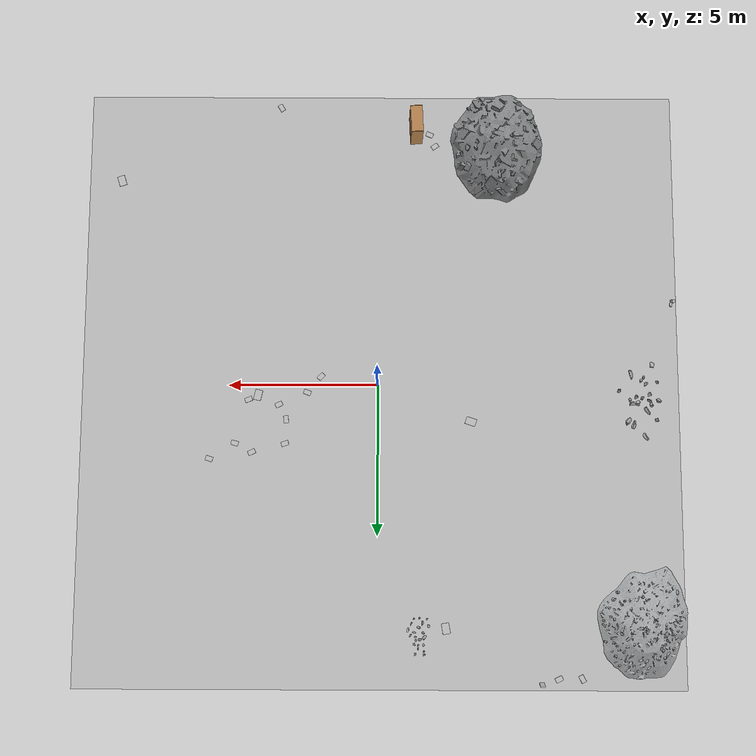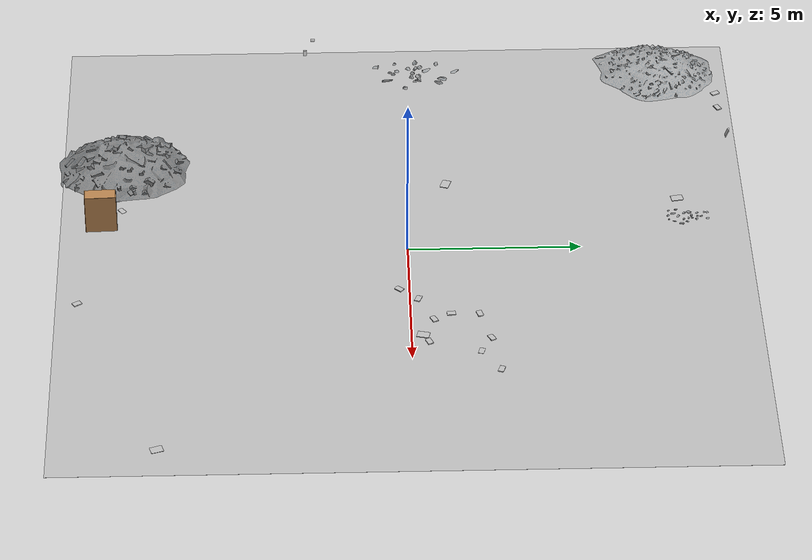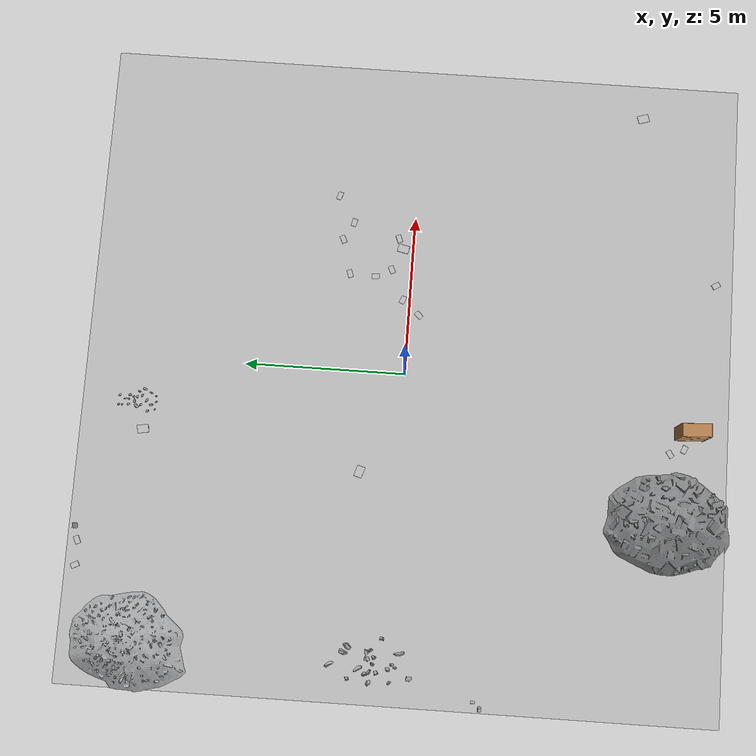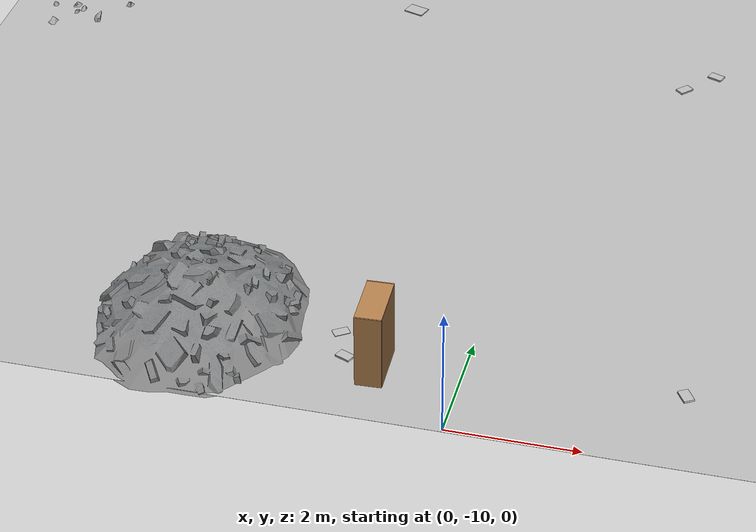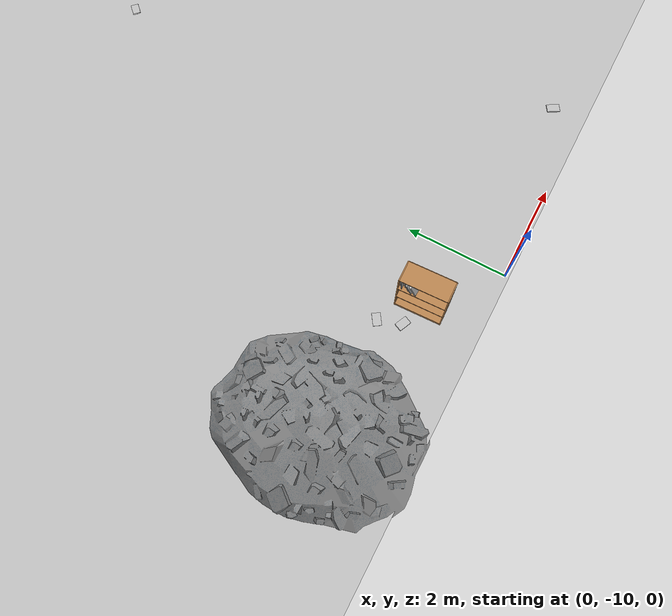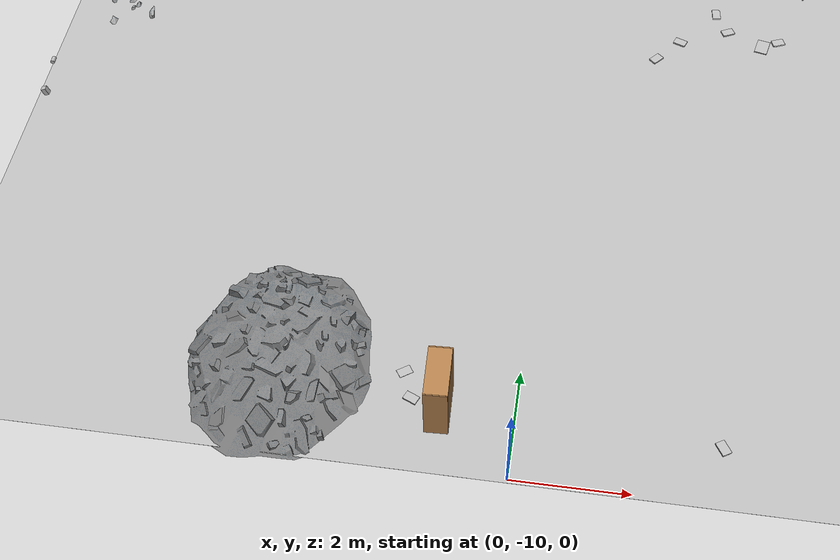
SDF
<sdf version="1.6">
 <world name="default">
  <scene><shadows>0</shadows><ambient>0.4 0.4 0.4 1</ambient><background>0.7 0.7 0.7 1</background></scene>
  <light name="sun" type="directional">
   <cast_shadows>0</cast_shadows>
   <pose>0 0 5 0 -0 0</pose>
   <diffuse>0.8 0.8 0.8 1</diffuse>
   <specular>0.1 0.1 0.1 1</specular>
   <attenuation>
    <range>1000</range>
    <constant>0.9</constant>
    <linear>0.01</linear>
    <quadratic>0.001</quadratic>
   </attenuation>
   <direction>-0.5 0.5 -1</direction>
  </light>
  <physics name="default_physics" default="0" type="ode">
   <max_step_size>0.001</max_step_size>
   <real_time_factor>1</real_time_factor>
   <real_time_update_rate>1000</real_time_update_rate>
  </physics>
  <scene><ambient>0.4 0.4 0.4 1</ambient><background>0.7 0.7 0.7 1</background><shadows>1</shadows></scene>
  <spherical_coordinates>
   <surface_model>EARTH_WGS84</surface_model>
   <latitude_deg>0</latitude_deg>
   <longitude_deg>0</longitude_deg>
   <elevation>0</elevation>
   <heading_deg>0</heading_deg>
  </spherical_coordinates>
  <model name="ground_plane">
   <static>1</static>
   <link name="link">
    <collision name="collision">
     <geometry><plane><normal>0 0 1</normal><size>100 100</size></plane></geometry>
     <surface><friction><ode><mu>1</mu><mu2>1</mu2></ode></friction></surface>
    </collision>
    <visual name="visual">
     <cast_shadows>0</cast_shadows>
     <geometry><plane><normal>0 0 1</normal><size>100 100</size></plane></geometry>
     <material>
      <script><uri>file://media/materials/scripts/gazebo.material</uri><name>Gazebo/Grey</name></script>
     </material>
    </visual>
    <velocity_decay><linear>0</linear><angular>0</angular></velocity_decay>
   </link>
  </model>
  <gravity>0 0 -9.8</gravity>
  <magnetic_field>6e-06 2.3e-05 -4.2e-05</magnetic_field>
  <atmosphere type="adiabatic"/>
  <model name="bookshelf">
   <static>1</static>
   <link name="link">
    <inertial><mass>1</mass></inertial>
    <collision name="back">
     <pose>0 0.005 0.6 0 -0 0</pose>
     <geometry><box><size>0.9 0.01 1.2</size></box></geometry>
    </collision>
    <visual name="visual1">
     <pose>0 0.005 0.6 0 -0 0</pose>
     <geometry><box><size>0.9 0.01 1.2</size></box></geometry>
     <material>
      <script><uri>file://media/materials/scripts/gazebo.material</uri><name>Gazebo/Wood</name></script>
     </material>
    </visual>
    <collision name="left_side">
     <pose>0.45 -0.195 0.6 0 -0 0</pose>
     <geometry><box><size>0.02 0.4 1.2</size></box></geometry>
    </collision>
    <visual name="visual2">
     <pose>0.45 -0.195 0.6 0 -0 0</pose>
     <geometry><box><size>0.02 0.4 1.2</size></box></geometry>
     <material>
      <script><uri>file://media/materials/scripts/gazebo.material</uri><name>Gazebo/Wood</name></script>
     </material>
    </visual>
    <collision name="right_side">
     <pose>-0.45 -0.195 0.6 0 -0 0</pose>
     <geometry><box><size>0.02 0.4 1.2</size></box></geometry>
    </collision>
    <visual name="visual3">
     <pose>-0.45 -0.195 0.6 0 -0 0</pose>
     <geometry><box><size>0.02 0.4 1.2</size></box></geometry>
     <material>
      <script><uri>file://media/materials/scripts/gazebo.material</uri><name>Gazebo/Wood</name></script>
     </material>
    </visual>
    <collision name="bottom">
     <pose>0 -0.195 0.03 0 -0 0</pose>
     <geometry><box><size>0.88 0.4 0.06</size></box></geometry>
    </collision>
    <visual name="visual4">
     <pose>0 -0.195 0.03 0 -0 0</pose>
     <geometry><box><size>0.88 0.4 0.06</size></box></geometry>
     <material>
      <script><uri>file://media/materials/scripts/gazebo.material</uri><name>Gazebo/Wood</name></script>
     </material>
    </visual>
    <collision name="top">
     <pose>0 -0.195 1.19 0 -0 0</pose>
     <geometry><box><size>0.88 0.4 0.02</size></box></geometry>
    </collision>
    <visual name="visual5">
     <pose>0 -0.195 1.19 0 -0 0</pose>
     <geometry><box><size>0.88 0.4 0.02</size></box></geometry>
     <material>
      <script><uri>file://media/materials/scripts/gazebo.material</uri><name>Gazebo/Wood</name></script>
     </material>
    </visual>
    <collision name="low_shelf">
     <pose>0 -0.195 0.43 0 -0 0</pose>
     <geometry><box><size>0.88 0.4 0.02</size></box></geometry>
    </collision>
    <visual name="visual6">
     <pose>0 -0.195 0.43 0 -0 0</pose>
     <geometry><box><size>0.88 0.4 0.02</size></box></geometry>
     <material>
      <script><uri>file://media/materials/scripts/gazebo.material</uri><name>Gazebo/Wood</name></script>
     </material>
    </visual>
    <collision name="high_shelf">
     <pose>0 -0.195 0.8 0 -0 0</pose>
     <geometry><box><size>0.88 0.4 0.02</size></box></geometry>
    </collision>
    <visual name="visual7">
     <pose>0 -0.195 0.8 0 -0 0</pose>
     <geometry><box><size>0.88 0.4 0.02</size></box></geometry>
     <material>
      <script><uri>file://media/materials/scripts/gazebo.material</uri><name>Gazebo/Wood</name></script>
     </material>
    </visual>
   </link>
   <pose>-1.08243 -8.86921 0.024753 0 0 -1.52822</pose>
  </model>
  <model name="book_16">
   <link name="cover">
    <pose>0 -0.000108 0.015405 0 -0 0</pose>
    <visual name="visual">
     <geometry><box><size>0.245 0.16 0.03</size></box></geometry>
     <material>
      <script>
       <uri>model://book_16/materials/scripts</uri>
       <uri>model://book_16/materials/textures</uri>
       <name>book_16</name>
      </script>
     </material>
    </visual>
    <collision name="collision"><geometry><box><size>0.245 0.16 0.03</size></box></geometry></collision>
   </link>
   <link name="page">
    <pose>0 0.000608 0.015405 0 -0 0</pose>
    <visual name="visual">
     <geometry><box><size>0.24502 0.15862 0.028</size></box></geometry>
     <material>
      <lighting>1</lighting>
      <ambient>1 1 1 1</ambient>
      <diffuse>1 1 1 1</diffuse>
      <specular>0.01 0.01 0.01 1</specular>
      <emissive>0 0 0 1</emissive>
      <shader type="vertex"><normal_map>__default__</normal_map></shader>
     </material>
    </visual>
    <collision name="collision"><geometry><box><size>0.245 0.16 0.03</size></box></geometry></collision>
   </link>
   <static>1</static>
   <pose>4.32601 0.485904 0.027757 0 0 -2.75724</pose>
  </model>
  <model name="book_20">
   <link name="cover">
    <pose>0 -0.000108 0.015405 0 -0 0</pose>
    <visual name="visual">
     <geometry><box><size>0.245 0.16 0.03</size></box></geometry>
     <material>
      <script>
       <uri>model://book_20/materials/scripts</uri>
       <uri>model://book_20/materials/textures</uri>
       <name>book_20</name>
      </script>
     </material>
    </visual>
    <collision name="collision"><geometry><box><size>0.245 0.16 0.03</size></box></geometry></collision>
   </link>
   <link name="page">
    <pose>0 0.000608 0.015405 0 -0 0</pose>
    <visual name="visual">
     <geometry><box><size>0.24502 0.15862 0.028</size></box></geometry>
     <material>
      <lighting>1</lighting>
      <ambient>1 1 1 1</ambient>
      <diffuse>1 1 1 1</diffuse>
      <specular>0.01 0.01 0.01 1</specular>
      <emissive>0 0 0 1</emissive>
      <shader type="vertex"><normal_map>__default__</normal_map></shader>
     </material>
    </visual>
    <collision name="collision"><geometry><box><size>0.245 0.16 0.03</size></box></geometry></collision>
   </link>
   <static>1</static>
   <pose>-1.33514 -8.47354 0.933303 -3.1415 -1.50452 1.64295</pose>
  </model>
  <model name="book_21">
   <link name="cover">
    <pose>0 -0.000108 0.005 0 -0 0</pose>
    <visual name="visual">
     <geometry><box><size>0.245 0.16 0.01</size></box></geometry>
     <material>
      <script>
       <uri>model://book_21/materials/scripts</uri>
       <uri>model://book_21/materials/textures</uri>
       <name>book_21</name>
      </script>
     </material>
    </visual>
    <collision name="collision"><geometry><box><size>0.245 0.16 0.01</size></box></geometry></collision>
   </link>
   <link name="page">
    <pose>0 0.000608 0.005 0 -0 0</pose>
    <visual name="visual">
     <geometry><box><size>0.24502 0.15862 0.008</size></box></geometry>
     <material>
      <lighting>1</lighting>
      <ambient>1 1 1 1</ambient>
      <diffuse>1 1 1 1</diffuse>
      <specular>0.01 0.01 0.01 1</specular>
      <emissive>0 0 0 1</emissive>
      <shader type="vertex"><normal_map>__default__</normal_map></shader>
     </material>
    </visual>
    <collision name="collision"><geometry><box><size>0.245 0.16 0.008</size></box></geometry></collision>
   </link>
   <static>1</static>
   <pose>-1.32998 -8.52484 0.933 -3.13832 -1.32475 1.56842</pose>
  </model>
  <model name="book_3">
   <link name="cover">
    <pose>0 -0.000108 0.01 0 -0 0</pose>
    <visual name="visual">
     <geometry><box><size>0.245 0.16 0.02</size></box></geometry>
     <material>
      <script>
       <uri>model://book_3/materials/scripts</uri>
       <uri>model://book_3/materials/textures</uri>
       <name>book_3</name>
      </script>
     </material>
    </visual>
    <collision name="collision"><geometry><box><size>0.245 0.16 0.02</size></box></geometry></collision>
   </link>
   <link name="page">
    <pose>0 0.000608 0.01 0 -0 0</pose>
    <visual name="visual">
     <geometry><box><size>0.24502 0.15862 0.018</size></box></geometry>
     <material>
      <lighting>1</lighting>
      <ambient>1 1 1 1</ambient>
      <diffuse>1 1 1 1</diffuse>
      <specular>0.01 0.01 0.01 1</specular>
      <emissive>0 0 0 1</emissive>
      <shader type="vertex"><normal_map>__default__</normal_map></shader>
     </material>
    </visual>
    <collision name="collision"><geometry><box><size>0.245 0.16 0.018</size></box></geometry></collision>
   </link>
   <static>1</static>
   <pose>-1.37287 -8.59003 0.954428 -3.1394 -1.1994 1.56955</pose>
  </model>
  <model name="book_4">
   <link name="cover">
    <pose>0 -0.000108 0.01 0 -0 0</pose>
    <visual name="visual">
     <geometry><box><size>0.245 0.16 0.02</size></box></geometry>
     <material>
      <script>
       <uri>model://book_4/materials/scripts</uri>
       <uri>model://book_4/materials/textures</uri>
       <name>book_4</name>
      </script>
     </material>
     <cast_shadows>0</cast_shadows>
    </visual>
    <collision name="collision"><geometry><box><size>0.245 0.16 0.02</size></box></geometry></collision>
   </link>
   <link name="page">
    <pose>0 0.000608 0.01 0 -0 0</pose>
    <visual name="visual">
     <geometry><box><size>0.24502 0.15862 0.018</size></box></geometry>
     <material>
      <lighting>1</lighting>
      <ambient>1 1 1 1</ambient>
      <diffuse>1 1 1 1</diffuse>
      <specular>0.01 0.01 0.01 1</specular>
      <emissive>0 0 0 1</emissive>
      <shader type="vertex"><normal_map>__default__</normal_map></shader>
     </material>
     <cast_shadows>0</cast_shadows>
    </visual>
    <collision name="collision"><geometry><box><size>0.245 0.16 0.018</size></box></geometry></collision>
   </link>
   <static>1</static>
   <pose>-1.33002 -8.62073 0.934243 -3.13946 -1.18764 1.56962</pose>
  </model>
  <model name="book_9">
   <link name="cover">
    <pose>0 -0.000108 0.005 0 -0 0</pose>
    <visual name="visual">
     <geometry><box><size>0.245 0.16 0.01</size></box></geometry>
     <material>
      <script>
       <uri>model://book_9/materials/scripts</uri>
       <uri>model://book_9/materials/textures</uri>
       <name>book_9</name>
      </script>
     </material>
    </visual>
    <collision name="collision"><geometry><box><size>0.245 0.16 0.01</size></box></geometry></collision>
   </link>
   <link name="page">
    <pose>0 0.000608 0.005 0 -0 0</pose>
    <visual name="visual">
     <geometry><box><size>0.24502 0.15862 0.008</size></box></geometry>
     <material>
      <lighting>1</lighting>
      <ambient>1 1 1 1</ambient>
      <diffuse>1 1 1 1</diffuse>
      <specular>0.01 0.01 0.01 1</specular>
      <emissive>0 0 0 1</emissive>
      <shader type="vertex"><normal_map>__default__</normal_map></shader>
     </material>
    </visual>
    <collision name="collision"><geometry><box><size>0.245 0.16 0.008</size></box></geometry></collision>
   </link>
   <static>1</static>
   <pose>-1.38819 -8.49338 0.960616 -3.13349 -1.47234 1.57155</pose>
  </model>
  <model name="book_16_0">
   <link name="cover">
    <pose>0 -0.000108 0.015405 0 -0 0</pose>
    <visual name="visual">
     <geometry><box><size>0.245 0.16 0.03</size></box></geometry>
     <material>
      <script>
       <uri>model://book_16/materials/scripts</uri>
       <uri>model://book_16/materials/textures</uri>
       <name>book_16</name>
      </script>
     </material>
    </visual>
    <collision name="collision"><geometry><box><size>0.245 0.16 0.03</size></box></geometry></collision>
   </link>
   <link name="page">
    <pose>0 0.000608 0.015405 0 -0 0</pose>
    <visual name="visual">
     <geometry><box><size>0.24502 0.15862 0.028</size></box></geometry>
     <material>
      <lighting>1</lighting>
      <ambient>1 1 1 1</ambient>
      <diffuse>1 1 1 1</diffuse>
      <specular>0.01 0.01 0.01 1</specular>
      <emissive>0 0 0 1</emissive>
      <shader type="vertex"><normal_map>__default__</normal_map></shader>
     </material>
    </visual>
    <collision name="collision"><geometry><box><size>0.245 0.16 0.03</size></box></geometry></collision>
   </link>
   <static>1</static>
   <pose>-1.32786 -8.56422 0.936359 -3.13881 -1.28012 1.56893</pose>
  </model>
  <model name="book_13">
   <link name="cover">
    <pose>0 -0.000108 0.015405 0 -0 0</pose>
    <visual name="visual">
     <geometry><box><size>0.245 0.16 0.03</size></box></geometry>
     <material>
      <script>
       <uri>model://book_13/materials/scripts</uri>
       <uri>model://book_13/materials/textures</uri>
       <name>book_13</name>
      </script>
     </material>
    </visual>
    <collision name="collision"><geometry><box><size>0.245 0.16 0.03</size></box></geometry></collision>
   </link>
   <link name="page">
    <pose>0 0.000608 0.015405 0 -0 0</pose>
    <visual name="visual">
     <geometry><box><size>0.24502 0.15862 0.028</size></box></geometry>
     <material>
      <lighting>1</lighting>
      <ambient>1 1 1 1</ambient>
      <diffuse>1 1 1 1</diffuse>
      <specular>0.01 0.01 0.01 1</specular>
      <emissive>0 0 0 1</emissive>
      <shader type="vertex"><normal_map>__default__</normal_map></shader>
     </material>
    </visual>
    <collision name="collision"><geometry><box><size>0.245 0.16 0.03</size></box></geometry></collision>
   </link>
   <static>1</static>
   <pose>-1.3923 -8.72149 0.9569 -3.13982 -1.10393 1.57001</pose>
  </model>
  <model name="book_6">
   <link name="cover">
    <pose>0 -0.000108 0.01 0 -0 0</pose>
    <visual name="visual">
     <geometry><box><size>0.245 0.16 0.02</size></box></geometry>
     <material>
      <script>
       <uri>model://book_6/materials/scripts</uri>
       <uri>model://book_6/materials/textures</uri>
       <name>book_6</name>
      </script>
     </material>
    </visual>
    <collision name="collision"><geometry><box><size>0.245 0.16 0.02</size></box></geometry></collision>
   </link>
   <link name="page">
    <pose>0 0.000608 0.01 0 -0 0</pose>
    <visual name="visual">
     <geometry><box><size>0.24502 0.15862 0.018</size></box></geometry>
     <material>
      <lighting>1</lighting>
      <ambient>1 1 1 1</ambient>
      <diffuse>1 1 1 1</diffuse>
      <specular>0.01 0.01 0.01 1</specular>
      <emissive>0 0 0 1</emissive>
      <shader type="vertex"><normal_map>__default__</normal_map></shader>
     </material>
    </visual>
    <collision name="collision"><geometry><box><size>0.245 0.16 0.018</size></box></geometry></collision>
   </link>
   <static>1</static>
   <pose>-1.39435 -8.64079 0.950904 -3.13966 -1.14492 1.56984</pose>
  </model>
  <model name="book_8">
   <link name="cover">
    <pose>0 -0.000108 0.005 0 -0 0</pose>
    <visual name="visual">
     <geometry><box><size>0.245 0.16 0.01</size></box></geometry>
     <material>
      <script>
       <uri>model://book_8/materials/scripts</uri>
       <uri>model://book_8/materials/textures</uri>
       <name>book_8</name>
      </script>
     </material>
    </visual>
    <collision name="collision"><geometry><box><size>0.245 0.16 0.01</size></box></geometry></collision>
   </link>
   <link name="page">
    <pose>0 0.000608 0.005 0 -0 0</pose>
    <visual name="visual">
     <geometry><box><size>0.24502 0.15862 0.008</size></box></geometry>
     <material>
      <lighting>1</lighting>
      <ambient>1 1 1 1</ambient>
      <diffuse>1 1 1 1</diffuse>
      <specular>0.01 0.01 0.01 1</specular>
      <emissive>0 0 0 1</emissive>
      <shader type="vertex"><normal_map>__default__</normal_map></shader>
     </material>
    </visual>
    <collision name="collision"><geometry><box><size>0.245 0.16 0.008</size></box></geometry></collision>
   </link>
   <static>1</static>
   <pose>4.76567 1.94268 0.02031 0 -0 2.87142</pose>
  </model>
  <model name="book_19">
   <link name="cover">
    <pose>0 -0.000108 0.015405 0 -0 0</pose>
    <visual name="visual">
     <geometry><box><size>0.245 0.16 0.03</size></box></geometry>
     <material>
      <script>
       <uri>model://book_19/materials/scripts</uri>
       <uri>model://book_19/materials/textures</uri>
       <name>book_19</name>
      </script>
     </material>
    </visual>
    <collision name="collision"><geometry><box><size>0.245 0.16 0.03</size></box></geometry></collision>
   </link>
   <link name="page">
    <pose>0 0.000608 0.015405 0 -0 0</pose>
    <visual name="visual">
     <geometry><box><size>0.24502 0.15862 0.028</size></box></geometry>
     <material>
      <lighting>1</lighting>
      <ambient>1 1 1 1</ambient>
      <diffuse>1 1 1 1</diffuse>
      <specular>0.01 0.01 0.01 1</specular>
      <emissive>0 0 0 1</emissive>
      <shader type="vertex"><normal_map>__default__</normal_map></shader>
     </material>
    </visual>
    <collision name="collision"><geometry><box><size>0.245 0.16 0.03</size></box></geometry></collision>
   </link>
   <static>1</static>
   <pose>-1.32315 -8.68246 0.955089 -3.13968 -1.14225 1.56985</pose>
  </model>
  <model name="book_6_0">
   <link name="cover">
    <pose>0 -0.000108 0.01 0 -0 0</pose>
    <visual name="visual">
     <geometry><box><size>0.245 0.16 0.02</size></box></geometry>
     <material>
      <script>
       <uri>model://book_6/materials/scripts</uri>
       <uri>model://book_6/materials/textures</uri>
       <name>book_6</name>
      </script>
     </material>
    </visual>
    <collision name="collision"><geometry><box><size>0.245 0.16 0.02</size></box></geometry></collision>
   </link>
   <link name="page">
    <pose>0 0.000608 0.01 0 -0 0</pose>
    <visual name="visual">
     <geometry><box><size>0.24502 0.15862 0.018</size></box></geometry>
     <material>
      <lighting>1</lighting>
      <ambient>1 1 1 1</ambient>
      <diffuse>1 1 1 1</diffuse>
      <specular>0.01 0.01 0.01 1</specular>
      <emissive>0 0 0 1</emissive>
      <shader type="vertex"><normal_map>__default__</normal_map></shader>
     </material>
    </visual>
    <collision name="collision"><geometry><box><size>0.245 0.16 0.018</size></box></geometry></collision>
   </link>
   <static>1</static>
   <pose>-4.37689 -9.12673 0.113948 0 -0 1.58993</pose>
  </model>
  <model name="coffee_box">
   <link name="link_0">
    <visual name="visual">
     <pose>0 0 0.06 0 -0 0</pose>
     <geometry><cylinder><radius>0.04</radius><length>0.12</length></cylinder></geometry>
     <material>
      <script>
       <uri>model://coffee_box/materials/scripts</uri>
       <uri>model://coffee_box/materials/textures</uri>
       <name>coffee_pat</name>
      </script>
     </material>
    </visual>
    <collision name="collision">
     <geometry><cylinder><radius>0.04</radius><length>0.12</length></cylinder></geometry>
    </collision>
   </link>
   <static>1</static>
   <pose>-9.71504 -2.71285 0.736967 1.5488 -0.276425 -3.13559</pose>
  </model>
  <model name="tea_box">
   <link name="link">
    <pose>0 0 0.075 0 -0 0</pose>
    <visual name="visual">
     <geometry><box><size>0.1 0.1 0.15</size></box></geometry>
     <material>
      <script>
       <uri>model://tea_box/materials/scripts</uri>
       <uri>model://tea_box/materials/textures</uri>
       <name>tea_pat</name>
      </script>
     </material>
    </visual>
    <collision name="collision"><geometry><box><size>0.1 0.1 0.15</size></box></geometry></collision>
   </link>
   <static>1</static>
   <pose>-9.9277 -2.90064 0.040575 0 -0.351754 0</pose>
  </model>
  <model name="newspaper_2">
   <link name="link_0">
    <visual name="visual">
     <geometry><box><size>0.35 0.25 0.02</size></box></geometry>
     <material>
      <script>
       <uri>model://newspaper_2/materials/scripts</uri>
       <uri>model://newspaper_2/materials/textures</uri>
       <name>newspaper_2</name>
      </script>
     </material>
    </visual>
    <collision name="collision"><geometry><box><size>0.35 0.25 0.02</size></box></geometry></collision>
   </link>
   <static>1</static>
   <pose>8.8277 -7.06369 0.026164 -0.003988 0.021057 -1.26947</pose>
  </model>
  <model name="book_18_0">
   <link name="cover">
    <pose>0 -0.000108 0.015405 0 -0 0</pose>
    <visual name="visual">
     <geometry><box><size>0.245 0.16 0.03</size></box></geometry>
     <material>
      <script>
       <uri>model://book_18/materials/scripts</uri>
       <uri>model://book_18/materials/textures</uri>
       <name>book_18</name>
      </script>
     </material>
    </visual>
    <collision name="collision"><geometry><box><size>0.245 0.16 0.03</size></box></geometry></collision>
   </link>
   <link name="page">
    <pose>0 0.000608 0.015405 0 -0 0</pose>
    <visual name="visual">
     <geometry><box><size>0.24502 0.15862 0.028</size></box></geometry>
     <material>
      <lighting>1</lighting>
      <ambient>1 1 1 1</ambient>
      <diffuse>1 1 1 1</diffuse>
      <specular>0.01 0.01 0.01 1</specular>
      <emissive>0 0 0 1</emissive>
      <shader type="vertex"><normal_map>__default__</normal_map></shader>
     </material>
    </visual>
    <collision name="collision"><geometry><box><size>0.245 0.16 0.03</size></box></geometry></collision>
   </link>
   <static>1</static>
   <pose>3.29779 -9.39066 0.764084 0 0 -1.01851</pose>
  </model>
  <model name="newspaper_3">
   <link name="link_0">
    <visual name="visual">
     <geometry><box><size>0.35 0.25 0.02</size></box></geometry>
     <material>
      <script>
       <uri>model://newspaper_3/materials/scripts</uri>
       <uri>model://newspaper_3/materials/textures</uri>
       <name>newspaper_3</name>
      </script>
     </material>
    </visual>
    <collision name="collision"><geometry><box><size>0.35 0.25 0.02</size></box></geometry></collision>
   </link>
   <static>1</static>
   <pose>4.01161 0.328985 0.034462 0 0 -1.7948</pose>
  </model>
  <model name="newspaper_1_0">
   <link name="link_0">
    <visual name="visual">
     <geometry><box><size>0.35 0.25 0.02</size></box></geometry>
     <material>
      <script>
       <uri>model://newspaper_1/materials/scripts</uri>
       <uri>model://newspaper_1/materials/textures</uri>
       <name>newspaper_1</name>
      </script>
     </material>
    </visual>
    <collision name="collision"><geometry><box><size>0.35 0.25 0.02</size></box></geometry></collision>
   </link>
   <static>1</static>
   <pose>-2.24932 7.96945 0.033399 0 0 -1.39895</pose>
  </model>
  <model name="book_20_0">
   <link name="cover">
    <pose>0 -0.000108 0.015405 0 -0 0</pose>
    <visual name="visual">
     <geometry><box><size>0.245 0.16 0.03</size></box></geometry>
     <material>
      <script>
       <uri>model://book_20/materials/scripts</uri>
       <uri>model://book_20/materials/textures</uri>
       <name>book_20</name>
      </script>
     </material>
    </visual>
    <collision name="collision"><geometry><box><size>0.245 0.16 0.03</size></box></geometry></collision>
   </link>
   <link name="page">
    <pose>0 0.000608 0.015405 0 -0 0</pose>
    <visual name="visual">
     <geometry><box><size>0.24502 0.15862 0.028</size></box></geometry>
     <material>
      <lighting>1</lighting>
      <ambient>1 1 1 1</ambient>
      <diffuse>1 1 1 1</diffuse>
      <specular>0.01 0.01 0.01 1</specular>
      <emissive>0 0 0 1</emissive>
      <shader type="vertex"><normal_map>__default__</normal_map></shader>
     </material>
    </visual>
    <collision name="collision"><geometry><box><size>0.245 0.16 0.03</size></box></geometry></collision>
   </link>
   <static>1</static>
   <pose>-6.53491 9.43104 0.745542 0 0 -1.08929</pose>
  </model>
  <model name="book_14_2">
   <link name="cover">
    <pose>0 -0.000108 0.015405 0 -0 0</pose>
    <visual name="visual">
     <geometry><box><size>0.245 0.16 0.03</size></box></geometry>
     <material>
      <script>
       <uri>model://book_14/materials/scripts</uri>
       <uri>model://book_14/materials/textures</uri>
       <name>book_14</name>
      </script>
     </material>
    </visual>
    <collision name="collision"><geometry><box><size>0.245 0.16 0.03</size></box></geometry></collision>
   </link>
   <link name="page">
    <pose>0 0.000608 0.015405 0 -0 0</pose>
    <visual name="visual">
     <geometry><box><size>0.24502 0.15862 0.028</size></box></geometry>
     <material>
      <lighting>1</lighting>
      <ambient>1 1 1 1</ambient>
      <diffuse>1 1 1 1</diffuse>
      <specular>0.01 0.01 0.01 1</specular>
      <emissive>0 0 0 1</emissive>
      <shader type="vertex"><normal_map>__default__</normal_map></shader>
     </material>
    </visual>
    <collision name="collision"><geometry><box><size>0.245 0.16 0.03</size></box></geometry></collision>
   </link>
   <static>1</static>
   <pose>-5.79357 9.44373 0.745938 0 -0 0.452953</pose>
  </model>
  <model name="book_1_0">
   <link name="cover">
    <pose>0 -0.000108 0.015405 0 -0 0</pose>
    <visual name="visual">
     <geometry><box><size>0.245 0.16 0.03</size></box></geometry>
     <material>
      <script>
       <uri>model://book_1/materials/scripts</uri>
       <uri>model://book_1/materials/textures</uri>
       <name>book_1</name>
      </script>
     </material>
    </visual>
    <collision name="collision"><geometry><box><size>0.245 0.16 0.03</size></box></geometry></collision>
   </link>
   <link name="page">
    <pose>0 0.000608 0.015405 0 -0 0</pose>
    <visual name="visual">
     <geometry><box><size>0.24502 0.15862 0.028</size></box></geometry>
     <material>
      <lighting>1</lighting>
      <ambient>1 1 1 1</ambient>
      <diffuse>1 1 1 1</diffuse>
      <specular>0.01 0.01 0.01 1</specular>
      <emissive>0 0 0 1</emissive>
      <shader type="vertex"><normal_map>__default__</normal_map></shader>
     </material>
    </visual>
    <collision name="collision"><geometry><box><size>0.245 0.16 0.03</size></box></geometry></collision>
   </link>
   <static>1</static>
   <pose>-5.35497 9.7045 0.148737 3.14159 1.19238 -1.56981</pose>
  </model>
  <model name="newspaper_3_0">
   <link name="link_0">
    <visual name="visual">
     <geometry><box><size>0.35 0.25 0.02</size></box></geometry>
     <material>
      <script>
       <uri>model://newspaper_3/materials/scripts</uri>
       <uri>model://newspaper_3/materials/textures</uri>
       <name>newspaper_3</name>
      </script>
     </material>
    </visual>
    <collision name="collision"><geometry><box><size>0.35 0.25 0.02</size></box></geometry></collision>
   </link>
   <static>1</static>
   <pose>-3.11567 1.19579 0.033255 0 -0 2.82539</pose>
  </model>
  <model name="Floor_room">
   <link name="main">
    <pose>0 0 0.01 0 -0 0</pose>
    <collision name="main_Collision"><geometry><box><size>20 20 0.001</size></box></geometry></collision>
    <visual name="main_Visual">
     <geometry><box><size>20 20 0.001</size></box></geometry>
     <material>
      <script>
       <uri>model://Floor_room/materials/scripts</uri>
       <uri>model://Floor_room/materials/textures</uri>
       <name>floor_room</name>
      </script>
     </material>
    </visual>
   </link>
   <static>1</static>
   <pose>-0.084723 -0.073632 0.012233 0 -0 0</pose>
  </model>
  <model name="book_10">
   <link name="cover">
    <pose>0 -0.000108 0.015405 0 -0 0</pose>
    <visual name="visual">
     <geometry><box><size>0.245 0.16 0.03</size></box></geometry>
     <material>
      <script>
       <uri>model://book_10/materials/scripts</uri>
       <uri>model://book_10/materials/textures</uri>
       <name>book_10</name>
      </script>
     </material>
    </visual>
    <collision name="collision"><geometry><box><size>0.245 0.16 0.03</size></box></geometry></collision>
   </link>
   <link name="page">
    <pose>0 0.000608 0.015405 0 -0 0</pose>
    <visual name="visual">
     <geometry><box><size>0.24502 0.15862 0.028</size></box></geometry>
     <material>
      <lighting>1</lighting>
      <ambient>1 1 1 1</ambient>
      <diffuse>1 1 1 1</diffuse>
      <specular>0.01 0.01 0.01 1</specular>
      <emissive>0 0 0 1</emissive>
      <shader type="vertex"><normal_map>__default__</normal_map></shader>
     </material>
    </visual>
    <collision name="collision"><geometry><box><size>0.245 0.16 0.03</size></box></geometry></collision>
   </link>
   <static>1</static>
   <pose>1.90222 -0.296191 0.022526 0 -0 0.831279</pose>
  </model>
  <model name="book_1">
   <link name="cover">
    <pose>0 -0.000108 0.015405 0 -0 0</pose>
    <visual name="visual">
     <geometry><box><size>0.245 0.16 0.03</size></box></geometry>
     <material>
      <script>
       <uri>model://book_1/materials/scripts</uri>
       <uri>model://book_1/materials/textures</uri>
       <name>book_1</name>
      </script>
     </material>
    </visual>
    <collision name="collision"><geometry><box><size>0.245 0.16 0.03</size></box></geometry></collision>
   </link>
   <link name="page">
    <pose>0 0.000608 0.015405 0 -0 0</pose>
    <visual name="visual">
     <geometry><box><size>0.24502 0.15862 0.028</size></box></geometry>
     <material>
      <lighting>1</lighting>
      <ambient>1 1 1 1</ambient>
      <diffuse>1 1 1 1</diffuse>
      <specular>0.01 0.01 0.01 1</specular>
      <emissive>0 0 0 1</emissive>
      <shader type="vertex"><normal_map>__default__</normal_map></shader>
     </material>
    </visual>
    <collision name="collision"><geometry><box><size>0.245 0.16 0.03</size></box></geometry></collision>
   </link>
   <static>1</static>
   <pose>3.09288 1.95422 0.023482 0 -0 0.308431</pose>
  </model>
  <model name="book_17">
   <link name="cover">
    <pose>0 -0.000108 0.015405 0 -0 0</pose>
    <visual name="visual">
     <geometry><box><size>0.245 0.16 0.03</size></box></geometry>
     <material>
      <script>
       <uri>model://book_17/materials/scripts</uri>
       <uri>model://book_17/materials/textures</uri>
       <name>book_17</name>
      </script>
     </material>
    </visual>
    <collision name="collision"><geometry><box><size>0.245 0.16 0.03</size></box></geometry></collision>
   </link>
   <link name="page">
    <pose>0 0.000608 0.015405 0 -0 0</pose>
    <visual name="visual">
     <geometry><box><size>0.24502 0.15862 0.028</size></box></geometry>
     <material>
      <lighting>1</lighting>
      <ambient>1 1 1 1</ambient>
      <diffuse>1 1 1 1</diffuse>
      <specular>0.01 0.01 0.01 1</specular>
      <emissive>0 0 0 1</emissive>
      <shader type="vertex"><normal_map>__default__</normal_map></shader>
     </material>
    </visual>
    <collision name="collision"><geometry><box><size>0.245 0.16 0.03</size></box></geometry></collision>
   </link>
   <static>1</static>
   <pose>3.06474 1.14609 0.023426 0 -0 1.67764</pose>
  </model>
  <model name="book_11">
   <link name="cover">
    <pose>0 -0.000108 0.015405 0 -0 0</pose>
    <visual name="visual">
     <geometry><box><size>0.245 0.16 0.03</size></box></geometry>
     <material>
      <script>
       <uri>model://book_11/materials/scripts</uri>
       <uri>model://book_11/materials/textures</uri>
       <name>book_11</name>
      </script>
     </material>
    </visual>
    <collision name="collision"><geometry><box><size>0.245 0.16 0.03</size></box></geometry></collision>
   </link>
   <link name="page">
    <pose>0 0.000608 0.015405 0 -0 0</pose>
    <visual name="visual">
     <geometry><box><size>0.24502 0.15862 0.028</size></box></geometry>
     <material>
      <lighting>1</lighting>
      <ambient>1 1 1 1</ambient>
      <diffuse>1 1 1 1</diffuse>
      <specular>0.01 0.01 0.01 1</specular>
      <emissive>0 0 0 1</emissive>
      <shader type="vertex"><normal_map>__default__</normal_map></shader>
     </material>
    </visual>
    <collision name="collision"><geometry><box><size>0.245 0.16 0.03</size></box></geometry></collision>
   </link>
   <static>1</static>
   <pose>2.36181 0.237224 0.0225 0 0 -0.374014</pose>
  </model>
  <model name="book_2">
   <link name="cover">
    <pose>0 -0.000108 0.015405 0 -0 0</pose>
    <visual name="visual">
     <geometry><box><size>0.245 0.16 0.03</size></box></geometry>
     <material>
      <script>
       <uri>model://book_2/materials/scripts</uri>
       <uri>model://book_2/materials/textures</uri>
       <name>book_2</name>
      </script>
     </material>
    </visual>
    <collision name="collision"><geometry><box><size>0.245 0.16 0.03</size></box></geometry></collision>
   </link>
   <link name="page">
    <pose>0 0.000608 0.015405 0 -0 0</pose>
    <visual name="visual">
     <geometry><box><size>0.24502 0.15862 0.028</size></box></geometry>
     <material>
      <lighting>1</lighting>
      <ambient>1 1 1 1</ambient>
      <diffuse>1 1 1 1</diffuse>
      <specular>0.01 0.01 0.01 1</specular>
      <emissive>0 0 0 1</emissive>
      <shader type="vertex"><normal_map>__default__</normal_map></shader>
     </material>
    </visual>
    <collision name="collision"><geometry><box><size>0.245 0.16 0.03</size></box></geometry></collision>
   </link>
   <static>1</static>
   <pose>3.31106 0.651772 0.0225 0 -0 0.448685</pose>
  </model>
  <model name="book_18">
   <link name="cover">
    <pose>0 -0.000108 0.015405 0 -0 0</pose>
    <visual name="visual">
     <geometry><box><size>0.245 0.16 0.03</size></box></geometry>
     <material>
      <script>
       <uri>model://book_18/materials/scripts</uri>
       <uri>model://book_18/materials/textures</uri>
       <name>book_18</name>
      </script>
     </material>
    </visual>
    <collision name="collision"><geometry><box><size>0.245 0.16 0.03</size></box></geometry></collision>
   </link>
   <link name="page">
    <pose>0 0.000608 0.015405 0 -0 0</pose>
    <visual name="visual">
     <geometry><box><size>0.24502 0.15862 0.028</size></box></geometry>
     <material>
      <lighting>1</lighting>
      <ambient>1 1 1 1</ambient>
      <diffuse>1 1 1 1</diffuse>
      <specular>0.01 0.01 0.01 1</specular>
      <emissive>0 0 0 1</emissive>
      <shader type="vertex"><normal_map>__default__</normal_map></shader>
     </material>
    </visual>
    <collision name="collision"><geometry><box><size>0.245 0.16 0.03</size></box></geometry></collision>
   </link>
   <static>1</static>
   <pose>4.19314 2.2481 0.020489 0 -0 0.455931</pose>
  </model>
  <model name="book_14">
   <link name="cover">
    <pose>0 -0.000108 0.015405 0 -0 0</pose>
    <visual name="visual">
     <geometry><box><size>0.245 0.16 0.03</size></box></geometry>
     <material>
      <script>
       <uri>model://book_14/materials/scripts</uri>
       <uri>model://book_14/materials/textures</uri>
       <name>book_14</name>
      </script>
     </material>
    </visual>
    <collision name="collision"><geometry><box><size>0.245 0.16 0.03</size></box></geometry></collision>
   </link>
   <link name="page">
    <pose>0 0.000608 0.015405 0 -0 0</pose>
    <visual name="visual">
     <geometry><box><size>0.24502 0.15862 0.028</size></box></geometry>
     <material>
      <lighting>1</lighting>
      <ambient>1 1 1 1</ambient>
      <diffuse>1 1 1 1</diffuse>
      <specular>0.01 0.01 0.01 1</specular>
      <emissive>0 0 0 1</emissive>
      <shader type="vertex"><normal_map>__default__</normal_map></shader>
     </material>
    </visual>
    <collision name="collision"><geometry><box><size>0.245 0.16 0.03</size></box></geometry></collision>
   </link>
   <static>1</static>
   <pose>5.60524 2.46454 0.0225 0 0 -0.316201</pose>
  </model>
  <model name="debris_1_2">
   <link name="link_2">
    <inertial>
     <mass>1</mass>
     <inertia>
      <ixx>0.166667</ixx>
      <ixy>0</ixy>
      <ixz>0</ixz>
      <iyy>0.166667</iyy>
      <iyz>0</iyz>
      <izz>0.166667</izz>
     </inertia>
    </inertial>
    <visual name="visual">
     <geometry><mesh><uri>model://debris_1_2/meshes/debris_1_2.dae</uri><scale>1 1 1</scale></mesh></geometry>
     <material>
      <script>
       <uri>model://debris_1_2/materials/scripts</uri>
       <uri>model://debris_1_2/materials/textures</uri>
       <name>debris_1</name>
      </script>
     </material>
    </visual>
    <collision name="collision">
     <geometry><mesh><uri>model://debris_1_2/meshes/debris_1_2.dae</uri><scale>1 1 1</scale></mesh></geometry>
    </collision>
   </link>
   <static>1</static>
   <pose>-4.14612 -8.35939 0 0 -0 0</pose>
  </model>
  <model name="book_17_0">
   <link name="cover">
    <pose>0 -0.000108 0.015405 0 -0 0</pose>
    <visual name="visual">
     <geometry><box><size>0.245 0.16 0.03</size></box></geometry>
     <material>
      <script>
       <uri>model://book_17/materials/scripts</uri>
       <uri>model://book_17/materials/textures</uri>
       <name>book_17</name>
      </script>
     </material>
    </visual>
    <collision name="collision"><geometry><box><size>0.245 0.16 0.03</size></box></geometry></collision>
   </link>
   <link name="page">
    <pose>0 0.000608 0.015405 0 -0 0</pose>
    <visual name="visual">
     <geometry><box><size>0.24502 0.15862 0.028</size></box></geometry>
     <material>
      <lighting>1</lighting>
      <ambient>1 1 1 1</ambient>
      <diffuse>1 1 1 1</diffuse>
      <specular>0.01 0.01 0.01 1</specular>
      <emissive>0 0 0 1</emissive>
      <shader type="vertex"><normal_map>__default__</normal_map></shader>
     </material>
    </visual>
    <collision name="collision"><geometry><box><size>0.245 0.16 0.03</size></box></geometry></collision>
   </link>
   <static>1</static>
   <pose>-1.75665 -8.74352 0.022868 0 0 -0.413172</pose>
  </model>
  <model name="book_9_0">
   <link name="cover">
    <pose>0 -0.000108 0.005 0 -0 0</pose>
    <visual name="visual">
     <geometry><box><size>0.245 0.16 0.01</size></box></geometry>
     <material>
      <script>
       <uri>model://book_9/materials/scripts</uri>
       <uri>model://book_9/materials/textures</uri>
       <name>book_9</name>
      </script>
     </material>
    </visual>
    <collision name="collision"><geometry><box><size>0.245 0.16 0.01</size></box></geometry></collision>
   </link>
   <link name="page">
    <pose>0 0.000608 0.005 0 -0 0</pose>
    <visual name="visual">
     <geometry><box><size>0.24502 0.15862 0.008</size></box></geometry>
     <material>
      <lighting>1</lighting>
      <ambient>1 1 1 1</ambient>
      <diffuse>1 1 1 1</diffuse>
      <specular>0.01 0.01 0.01 1</specular>
      <emissive>0 0 0 1</emissive>
      <shader type="vertex"><normal_map>__default__</normal_map></shader>
     </material>
    </visual>
    <collision name="collision"><geometry><box><size>0.245 0.16 0.008</size></box></geometry></collision>
   </link>
   <static>1</static>
   <pose>-1.93488 -8.29552 0.109362 0 -0 0.600175</pose>
  </model>
  <model name="debris_2_1">
   <link name="link_3">
    <inertial>
     <mass>1</mass>
     <inertia>
      <ixx>0.166667</ixx>
      <ixy>0</ixy>
      <ixz>0</ixz>
      <iyy>0.166667</iyy>
      <iyz>0</iyz>
      <izz>0.166667</izz>
     </inertia>
    </inertial>
    <visual name="visual">
     <geometry><mesh><uri>model://debris_2_1/meshes/debris_2_1.dae</uri><scale>1 1 1</scale></mesh></geometry>
     <material>
      <script>
       <uri>model://debris_2_1/materials/scripts</uri>
       <uri>model://debris_2_1/materials/textures</uri>
       <name>debris_2</name>
      </script>
     </material>
    </visual>
    <collision name="collision">
     <geometry><mesh><uri>model://debris_2_1/meshes/debris_2_1.dae</uri><scale>1 1 1</scale></mesh></geometry>
    </collision>
   </link>
   <static>1</static>
   <pose>-8.72018 0.470602 0.022664 0 -0 0.230047</pose>
  </model>
  <model name="debris_2_2">
   <link name="link_4">
    <inertial>
     <mass>1</mass>
     <inertia>
      <ixx>0.166667</ixx>
      <ixy>0</ixy>
      <ixz>0</ixz>
      <iyy>0.166667</iyy>
      <iyz>0</iyz>
      <izz>0.166667</izz>
     </inertia>
    </inertial>
    <visual name="visual">
     <geometry><mesh><uri>model://debris_2_2/meshes/debris_2_2.dae</uri><scale>1 1 1</scale></mesh></geometry>
     <material>
      <script>
       <uri>model://debris_2_2/materials/scripts</uri>
       <uri>model://debris_2_2/materials/textures</uri>
       <name>debris_2</name>
      </script>
     </material>
    </visual>
    <collision name="collision">
     <geometry><mesh><uri>model://debris_2_2/meshes/debris_2_2.dae</uri><scale>1 1 1</scale></mesh></geometry>
    </collision>
   </link>
   <static>1</static>
   <pose>-8.22535 7.63317 0.021949 0 -0 0</pose>
  </model>
  <model name="debris_3_1">
   <link name="link_5">
    <inertial>
     <mass>1</mass>
     <inertia>
      <ixx>0.166667</ixx>
      <ixy>0</ixy>
      <ixz>0</ixz>
      <iyy>0.166667</iyy>
      <iyz>0</iyz>
      <izz>0.166667</izz>
     </inertia>
    </inertial>
    <visual name="visual">
     <geometry><mesh><uri>model://debris_3_1/meshes/debris_3_1.dae</uri><scale>1 1 1</scale></mesh></geometry>
     <material>
      <script>
       <uri>model://debris_3_1/materials/scripts</uri>
       <uri>model://debris_3_1/materials/textures</uri>
       <name>debris_3</name>
      </script>
     </material>
    </visual>
    <collision name="collision">
     <geometry><mesh><uri>model://debris_3_1/meshes/debris_3_1.dae</uri><scale>1 1 1</scale></mesh></geometry>
    </collision>
   </link>
   <static>1</static>
   <pose>-1.32615 8.24182 0.027821 0 -0 0</pose>
  </model>
 </world>
</sdf>
